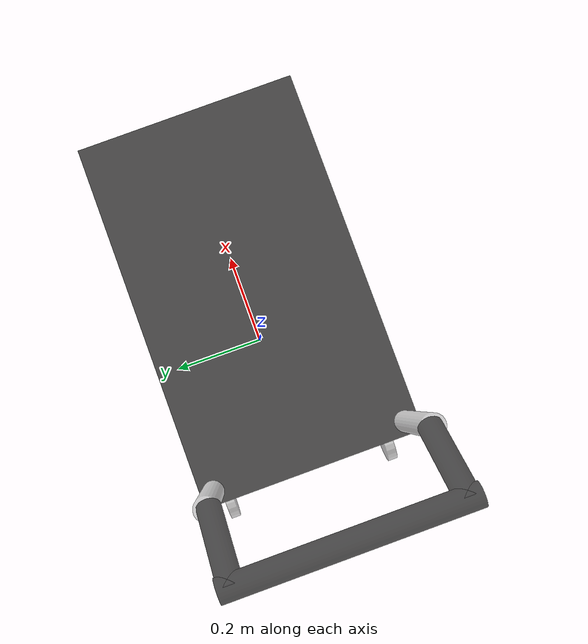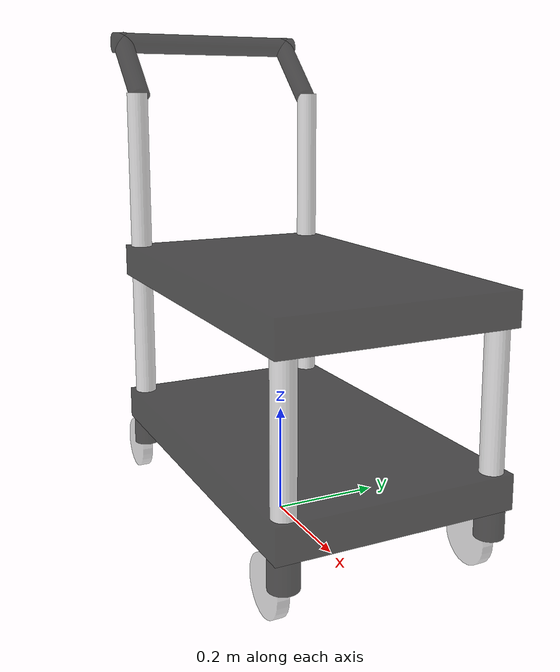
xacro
<?xml version="1.0"?>
<robot name="continuous_pendulum"
       xmlns:xi="http://www.w3.org/2001/XInclude"
       xmlns:gazebo="http://playerstage.sourceforge.net/gazebo/xmlschema/#gz"
       xmlns:model="http://playerstage.sourceforge.net/gazebo/xmlschema/#model"
       xmlns:sensor="http://playerstage.sourceforge.net/gazebo/xmlschema/#sensor"
       xmlns:body="http://playerstage.sourceforge.net/gazebo/xmlschema/#body"
       xmlns:geom="http://playerstage.sourceforge.net/gazebo/xmlschema/#geom"
       xmlns:joint="http://playerstage.sourceforge.net/gazebo/xmlschema/#joint"
       xmlns:interface="http://playerstage.sourceforge.net/gazebo/xmlschema/#interface"
       xmlns:rendering="http://playerstage.sourceforge.net/gazebo/xmlschema/#rendering"
       xmlns:renderable="http://playerstage.sourceforge.net/gazebo/xmlschema/#renderable"
       xmlns:controller="http://playerstage.sourceforge.net/gazebo/xmlschema/#controller"
       xmlns:xacro="http://ros.org/wiki/xacro"
       xmlns:physics="http://playerstage.sourceforge.net/gazebo/xmlschema/#physics">

  <xacro:property name="M_PI" value="3.1415926535897931" />

  <xacro:property name="cart_width" value="0.42" />
  <xacro:property name="cart_length" value="0.7" />

  <xacro:property name="shelf_thickness" value="0.06" />
  <xacro:property name="top_height" value="0.3" />

  <xacro:property name="handle_radius" value="0.02" />
  <xacro:property name="handle_length" value="0.4" />
  <xacro:property name="leg_radius" value="0.02" />

  <xacro:property name="caster_height" value="0.05" />
  <xacro:property name="caster_radius" value="0.025" />

  <xacro:property name="wheel_radius" value="0.05" />
  <xacro:property name="wheel_width" value="0.02" />
  <xacro:property name="wheel_height" value="0.1" />
  <xacro:property name="wheel_offset" value="0.05" />

  <xacro:property name="black" value="0 0 0 0.7" />
  <xacro:property name="silver" value="0.8 0.8 0.8 0.7" />
  <xacro:property name="steel" value="0.4 0.4 0.4 0.7" />

  <xacro:macro name="cart_caster" params="prefix parent color radius height top_offset *origin">
    <!--
       prefix = caster name ["front_left"]
       color = an rgba tuple "155 155 155 0.7"
       top_offset = a scalar
       *origin = an origin block containing xyz="" and rpy="" fields
      -->
    <joint name="${prefix}_caster" type="continuous" >
      <xacro:insert_block name="origin" />
      <parent link="${parent}" />
      <child link="${prefix}_caster" />
      <axis xyz="0 0 1" />
    </joint>
    <link name="${prefix}_caster">
      <inertial>
	<mass value="0.1"/>
	<origin xyz="0 0 ${top_offset}" />
	<inertia  ixx="0.0001" ixy="0.0"  ixz="0.0"  iyy="0.0001"  iyz="0.0"  izz="0.0001" />
      </inertial>
      <visual>
	<origin xyz="0 0 ${top_offset}" rpy="0 0 0" />
	<geometry>
          <cylinder radius="${radius}" length="${height}" />
	</geometry>
	<material name="${color}"> <!--Dumb to use for a name, but whatever-->
	  <color rgba="${color}"/>
	</material>
      </visual>
      <collision>
	<origin xyz="0 0 ${top_offset}" rpy="0 0 0" />
	<geometry>
          <cylinder radius="0.025" length="${height}" />
	</geometry>
      </collision>
    </link>
    <gazebo reference="${prefix}_caster">
      <mu1>0</mu1>
      <mu2>0</mu2>
      <material>Gazebo/Red</material>
      <turnGravityOff>false</turnGravityOff>
    </gazebo>
  </xacro:macro>

  <xacro:macro name="cart_wheel" params="prefix color offset height radius width">
    <!--
       prefix = wheel name ["front_left"]
       color = an rgba tuple "155 155 155 0.7"
       offset = a scalar
       radius = a scalar
       width = a scalar
      -->
    <joint name="${prefix}_wheel" type="continuous" >
      <origin xyz="${-offset} 0 ${-height}" rpy="0 0 0"/>
      <parent link="${prefix}_caster" />
      <child link="${prefix}_wheel" />
      <axis xyz="0 1 0" />
    </joint>
    <link name="${prefix}_wheel">
      <inertial>
	<mass value="0.1"/>
	<origin xyz="0 0 0" />
	<inertia  ixx="0.001" ixy="0.0"  ixz="0.0"  iyy="0.001"  iyz="0.0"  izz="0.001" />
      </inertial>
      <visual>
	<origin xyz="0 0 0" rpy="${M_PI/2} 0 0" />
	<geometry>
          <cylinder radius="${radius}" length="${width}" />
	</geometry>
	<material name="${color}"> <!--Dumb to use for a name, but whatever-->
	  <color rgba="${color}"/>
	</material>
      </visual>
      <collision>
	<origin xyz="0 0 0" rpy="${M_PI/2} 0 0" />
	<geometry>
          <cylinder radius="${radius}" length="${width}" />
	</geometry>
      </collision>
    </link>
    <gazebo reference="${prefix}_wheel">
      <dampingFactor>0.01</dampingFactor>
      <mu1>1</mu1>
      <mu2>1</mu2>
      <material>Gazebo/Green</material>
      <turnGravityOff>false</turnGravityOff>
    </gazebo>
  </xacro:macro>

  <xacro:macro name="cart_shelf" params="name mass parent color length width thickness *origin">
  <joint name="${name}_joint" type="fixed" >
    <xacro:insert_block name="origin" />
    <parent link="${parent}" />
    <child link="${name}" />
  </joint>
    <link name="${name}">
      <inertial>
	<mass value="${mass}"/>
	<origin xyz="0 0 0" />
	<inertia  ixx="0.1" ixy="0.0"  ixz="0.0"  iyy="0.1"  iyz="0.0"  izz="0.1" />
      </inertial>
      <visual>
	<origin xyz="0 0 0" rpy="0 0 0" />
	<geometry>
          <box size="${length} ${width} ${thickness}" />
	</geometry>
	<material name="${color}"> <!--Dumb to use for a name, but whatever-->
	  <color rgba="${color}"/>
	</material>
      </visual>
      <collision>
	<origin xyz="0 0 0" rpy="0 0 0" />
	<geometry>
          <box size="${length} ${width} ${thickness}" />
	</geometry>
      </collision>
    </link>
    <gazebo reference="${name}">
      <mu1>10</mu1>
      <mu2>10</mu2>
      <material>Gazebo/Blue</material>
      <turnGravityOff>false</turnGravityOff>
    </gazebo>
  </xacro:macro>

  <xacro:macro name="cart_bar" params="name parent color radius length *origin">
    <joint name="${name}_joint" type="fixed" >
      <xacro:insert_block name="origin" />
      <parent link="${parent}" />
      <child link="${name}" />
    </joint>
    <link name="${name}">
      <inertial>
	<mass value="0.1"/>
	<origin xyz="0 0 0" />
	<inertia  ixx="0.01" ixy="0.0"  ixz="0.0"  iyy="0.01"  iyz="0.0"  izz="0.01" />
      </inertial>
      <visual>
	<origin xyz="0 0 0" rpy="0 0 0"/>
	<geometry>
          <cylinder radius="${radius}" length="${length}" />
	</geometry>
	<material name="${color}">
	  <color rgba="${color}"/>
	</material>
      </visual>
      <collision>
	<origin xyz="0 0 0" rpy="0 0 0"/>
	<geometry>
          <cylinder radius="${radius}" length="${length}" />
	</geometry>
      </collision>
    </link>
    <gazebo reference="${name}">
      <mu1>10</mu1>
      <mu2>10</mu2>
      <material>Gazebo/BumpyMetal</material>
      <turnGravityOff>false</turnGravityOff>
    </gazebo>
  </xacro:macro>

  <!-- Base link of the robot (we attach cart frame to this in tf using fake_cart_joint_state_publisher)-->
  <link name="base">
    <inertial>
      <mass value="0.1"/>
      <inertia  ixx="0.01" ixy="0.0"  ixz="0.0"  iyy="0.01"  iyz="0.0"  izz="0.01" />
    </inertial>
  </link>

  <!-- BOTTOM SHELF -->
  <xacro:cart_shelf name="bottom" mass="4" parent="base" color="${black}" length="${cart_length}" width="${cart_width}" thickness="${shelf_thickness}">
    <origin xyz="0.07 0.0 ${2*wheel_radius + shelf_thickness}" rpy="0 0 0" />
  </xacro:cart_shelf>

  <!-- MIDDLE SHELF -->
  <xacro:cart_shelf name="top" mass="1" parent="bottom" color="${black}" length="${cart_length}" width="${cart_width}" thickness="${shelf_thickness}" >
    <origin xyz="0 0 ${top_height}" rpy="0 0 0" />
  </xacro:cart_shelf>

  <!-- FRONT-LEFT CASTER -->
  <xacro:cart_caster prefix="front_left" parent="bottom" color="${black}" top_offset="${-shelf_thickness/2-caster_height/2}" radius="${caster_radius}" height="${caster_height}">
    <origin xyz="${cart_length/2 - caster_radius} ${-cart_width/2 + caster_radius} 0" rpy="0 0 0"/>
  </xacro:cart_caster>
  <xacro:cart_wheel prefix="front_left" color="${silver}" offset="${wheel_offset}" height="${wheel_height}" radius="${wheel_radius}" width="${wheel_width}" />

  <!-- FRONT-RIGHT CASTER -->
  <xacro:cart_caster prefix="front_right" parent="bottom" color="${black}" top_offset="${-shelf_thickness/2-caster_height/2}" radius="${caster_radius}" height="${caster_height}">
    <origin xyz="${cart_length/2 - caster_radius} ${cart_width/2 - caster_radius} 0" rpy="0 0 0"/>
  </xacro:cart_caster>
  <xacro:cart_wheel prefix="front_right" color="${silver}" offset="${wheel_offset}" height="${wheel_height}" radius="${wheel_radius}" width="${wheel_width}" />

  <!-- BACK-LEFT CASTER -->
  <xacro:cart_caster prefix="back_left" parent="bottom" color="${black}" top_offset="${-shelf_thickness/2-caster_height/2}" radius="${caster_radius}" height="${caster_height}">
    <origin xyz="${-cart_length/2 + caster_radius} ${-cart_width/2 + caster_radius} 0" rpy="0 0 0"/>
  </xacro:cart_caster>
  <xacro:cart_wheel prefix="back_left" color="${silver}" offset="${wheel_offset}" height="${wheel_height}" radius="${wheel_radius}" width="${wheel_width}" />

  <!-- BACK-RIGHT CASTER -->
  <xacro:cart_caster prefix="back_right" parent="bottom" color="${black}" top_offset="${-shelf_thickness/2-caster_height/2}" radius="${caster_radius}" height="${caster_height}">
    <origin xyz="${-cart_length/2 + caster_radius} ${cart_width/2 - caster_radius} 0" rpy="0 0 0"/>
  </xacro:cart_caster>
  <xacro:cart_wheel prefix="back_right" color="${silver}" offset="${wheel_offset}" height="${wheel_height}" radius="${wheel_radius}" width="${wheel_width}" />

  <!-- LEGS -->
  <xacro:cart_bar name="front_left_leg" parent="front_left_caster" color="${silver}" radius="${leg_radius}" length="${top_height - shelf_thickness}">
    <origin xyz="0 0 ${top_height/2}" rpy="0 0 0"/>
  </xacro:cart_bar>
  <xacro:cart_bar name="front_right_leg" parent="front_right_caster" color="${silver}" radius="${leg_radius}" length="${top_height - shelf_thickness}">
    <origin xyz="0 0 ${top_height/2}" rpy="0 0 0"/>
  </xacro:cart_bar>
  <xacro:cart_bar name="back_left_leg" parent="back_left_caster" color="${silver}" radius="${leg_radius}" length="${2*top_height}">
    <origin xyz="0 0 ${shelf_thickness/2 + top_height}" rpy="0 0 0"/>
  </xacro:cart_bar>
  <xacro:cart_bar name="back_right_leg" parent="back_right_caster" color="${silver}" radius="${leg_radius}" length="${2*top_height}">
    <origin xyz="0 0 ${shelf_thickness/2 + top_height}" rpy="0 0 0"/>
  </xacro:cart_bar>

  <!-- HANDLE BAR -->
  <xacro:cart_bar name="handle" parent="top" color="${black}" radius="${handle_radius}" length="${handle_length}">
    <origin xyz="${-cart_length/2 - 0.08} 0 ${top_height + 0.13}" rpy="${M_PI/2} 0 0"/>
  </xacro:cart_bar>
  <xacro:cart_bar name="handle_rmt" parent="handle" color="${black}" radius="${handle_radius}" length="${0.16}">
    <origin xyz="0.05 -0.05 ${handle_length/2 - handle_radius}" rpy="${M_PI/4} ${M_PI/2} 0"/>
  </xacro:cart_bar>
  <xacro:cart_bar name="handle_lmt" parent="handle" color="${black}" radius="${handle_radius}" length="${0.16}">
    <origin xyz="0.05 -0.05 -${handle_length/2 - handle_radius}" rpy="${M_PI/4} ${M_PI/2} 0"/>
  </xacro:cart_bar>

</robot>
